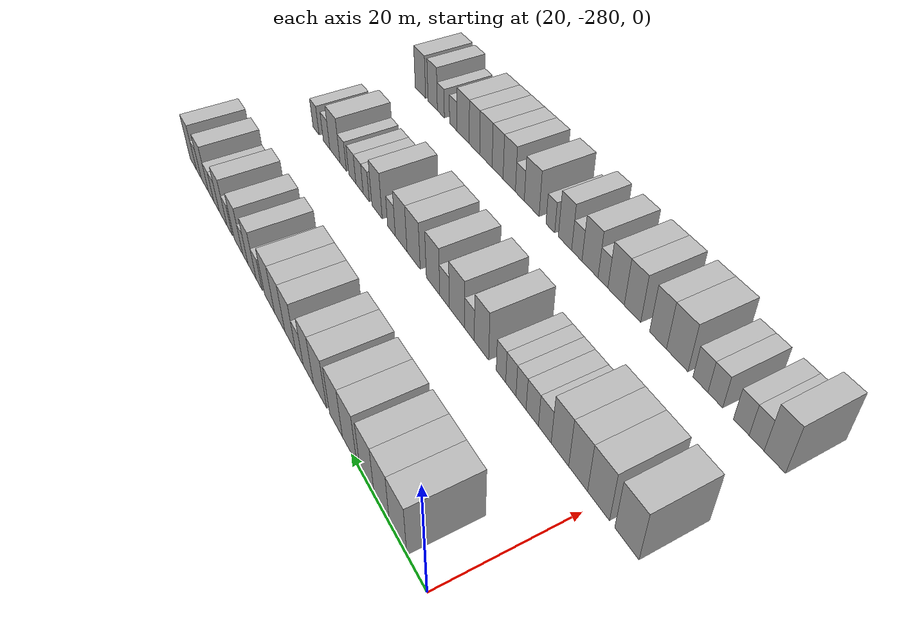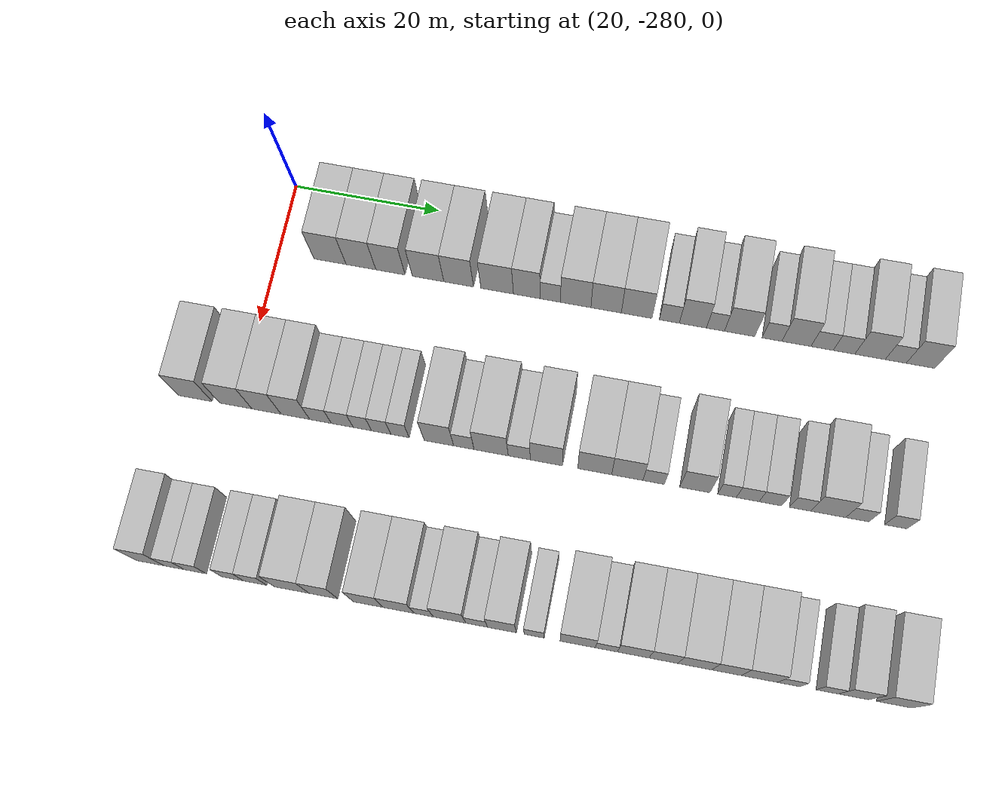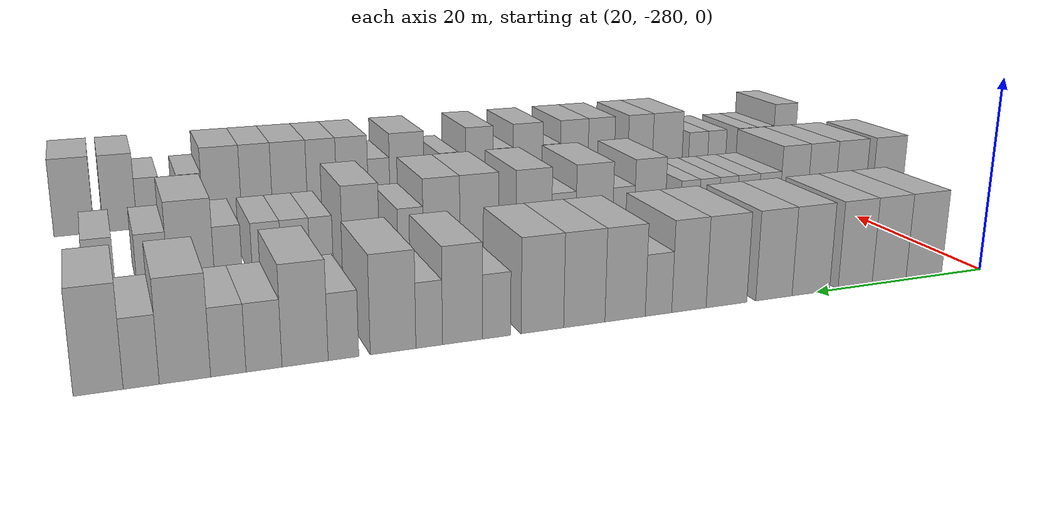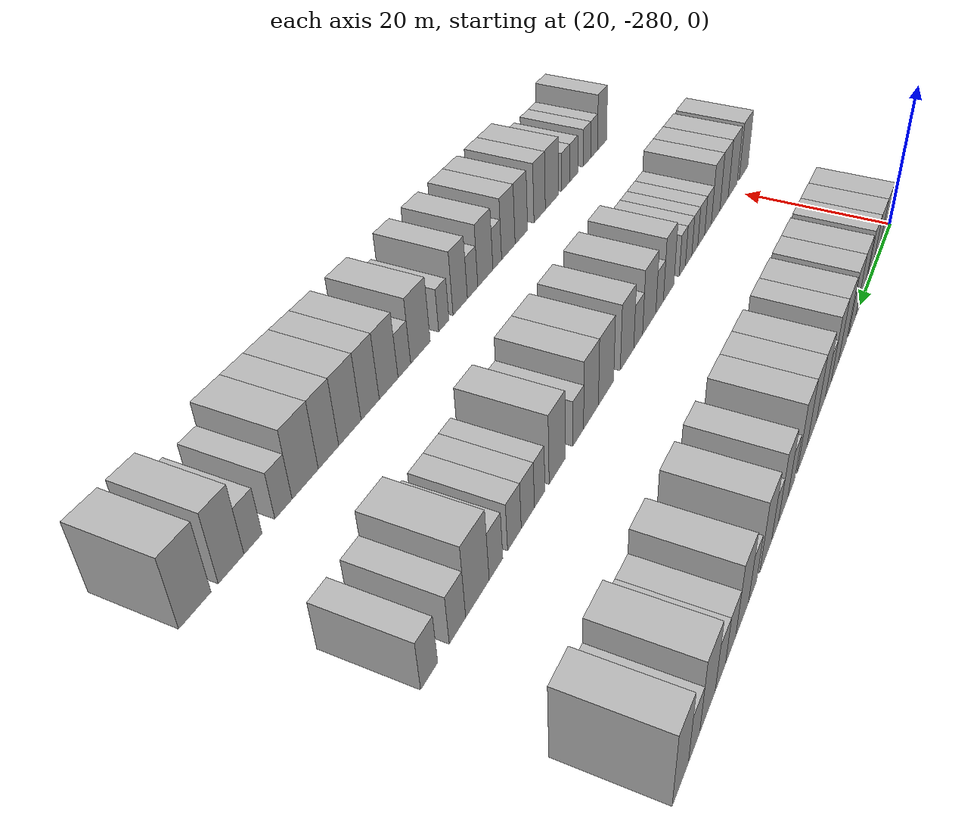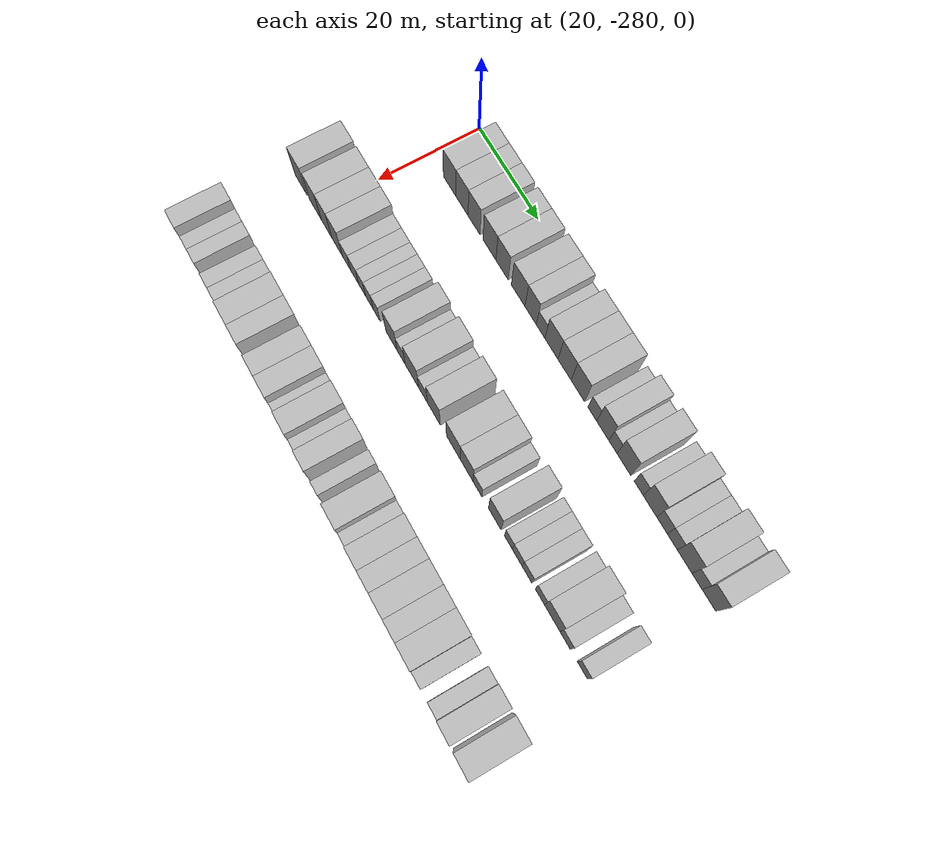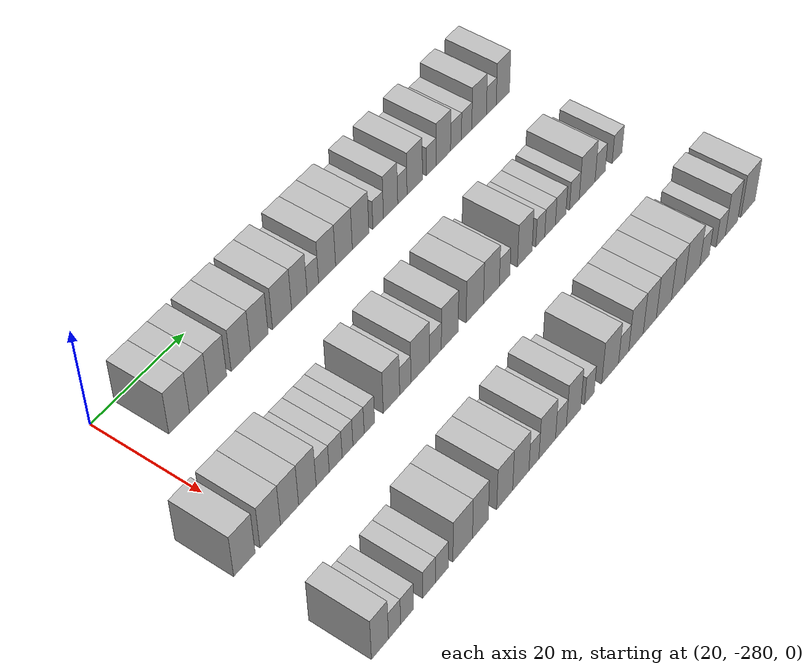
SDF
<sdf version="1.6">
 <world name="default">
  <model name="building_24">
   <static>1</static>
   <pose>25.0000 -272.8381 0 0.000000 0.000000 0.000000</pose>
   <link name="link">
    <pose>0 0 4.50 0 0 0</pose>
    <collision name="collision"><geometry><box><size>10.0000 4.4358 9.0000</size></box></geometry></collision>
    <visual name="visual">
     <cast_shadows>0</cast_shadows>
     <geometry><box><size>10.0000 4.4358 9.0000</size></box></geometry>
     <material>
      <script>
       <uri>model://HANNAS_wall/materials/scripts</uri>
       <uri>model://HANNAS_wall/materials/textures</uri>
       <name>vrc/HANNAS_wall</name>
      </script>
     </material>
    </visual>
   </link>
  </model>
  <model name="building_25">
   <static>1</static>
   <pose>25.0000 -268.5640 0 0.000000 0.000000 0.000000</pose>
   <link name="link">
    <pose>0 0 4.50 0 0 0</pose>
    <collision name="collision"><geometry><box><size>10.0000 4.1124 9.0000</size></box></geometry></collision>
    <visual name="visual">
     <cast_shadows>0</cast_shadows>
     <geometry><box><size>10.0000 4.1124 9.0000</size></box></geometry>
     <material>
      <script>
       <uri>model://HANNAS_wall/materials/scripts</uri>
       <uri>model://HANNAS_wall/materials/textures</uri>
       <name>vrc/HANNAS_wall</name>
      </script>
     </material>
    </visual>
   </link>
  </model>
  <model name="building_26">
   <static>1</static>
   <pose>25.0000 -264.4887 0 0.000000 0.000000 0.000000</pose>
   <link name="link">
    <pose>0 0 4.50 0 0 0</pose>
    <collision name="collision"><geometry><box><size>10.0000 4.0382 9.0000</size></box></geometry></collision>
    <visual name="visual">
     <cast_shadows>0</cast_shadows>
     <geometry><box><size>10.0000 4.0382 9.0000</size></box></geometry>
     <material>
      <script>
       <uri>model://HANNAS_wall/materials/scripts</uri>
       <uri>model://HANNAS_wall/materials/textures</uri>
       <name>vrc/HANNAS_wall</name>
      </script>
     </material>
    </visual>
   </link>
  </model>
  <model name="building_27">
   <static>1</static>
   <pose>25.0000 -259.3070 0 0.000000 0.000000 0.000000</pose>
   <link name="link">
    <pose>0 0 4.50 0 0 0</pose>
    <collision name="collision"><geometry><box><size>10.0000 4.3252 9.0000</size></box></geometry></collision>
    <visual name="visual">
     <cast_shadows>0</cast_shadows>
     <geometry><box><size>10.0000 4.3252 9.0000</size></box></geometry>
     <material>
      <script>
       <uri>model://HANNAS_wall/materials/scripts</uri>
       <uri>model://HANNAS_wall/materials/textures</uri>
       <name>vrc/HANNAS_wall</name>
      </script>
     </material>
    </visual>
   </link>
  </model>
  <model name="building_28">
   <static>1</static>
   <pose>25.0000 -255.1057 0 0.000000 0.000000 0.000000</pose>
   <link name="link">
    <pose>0 0 4.50 0 0 0</pose>
    <collision name="collision"><geometry><box><size>10.0000 4.0774 9.0000</size></box></geometry></collision>
    <visual name="visual">
     <cast_shadows>0</cast_shadows>
     <geometry><box><size>10.0000 4.0774 9.0000</size></box></geometry>
     <material>
      <script>
       <uri>model://HANNAS_wall/materials/scripts</uri>
       <uri>model://HANNAS_wall/materials/textures</uri>
       <name>vrc/HANNAS_wall</name>
      </script>
     </material>
    </visual>
   </link>
  </model>
  <model name="building_29">
   <static>1</static>
   <pose>25.0000 -249.8453 0 0.000000 0.000000 0.000000</pose>
   <link name="link">
    <pose>0 0 4.50 0 0 0</pose>
    <collision name="collision"><geometry><box><size>10.0000 4.4433 9.0000</size></box></geometry></collision>
    <visual name="visual">
     <cast_shadows>0</cast_shadows>
     <geometry><box><size>10.0000 4.4433 9.0000</size></box></geometry>
     <material>
      <script>
       <uri>model://HANNAS_wall/materials/scripts</uri>
       <uri>model://HANNAS_wall/materials/textures</uri>
       <name>vrc/HANNAS_wall</name>
      </script>
     </material>
    </visual>
   </link>
  </model>
  <model name="building_30">
   <static>1</static>
   <pose>25.0000 -245.7950 0 0.000000 0.000000 0.000000</pose>
   <link name="link">
    <pose>0 0 4.50 0 0 0</pose>
    <collision name="collision"><geometry><box><size>10.0000 3.6573 9.0000</size></box></geometry></collision>
    <visual name="visual">
     <cast_shadows>0</cast_shadows>
     <geometry><box><size>10.0000 3.6573 9.0000</size></box></geometry>
     <material>
      <script>
       <uri>model://HANNAS_wall/materials/scripts</uri>
       <uri>model://HANNAS_wall/materials/textures</uri>
       <name>vrc/HANNAS_wall</name>
      </script>
     </material>
    </visual>
   </link>
  </model>
  <model name="building_31">
   <static>1</static>
   <pose>25.0000 -242.5853 0 0.000000 0.000000 0.000000</pose>
   <link name="link">
    <pose>0 0 3.00 0 0 0</pose>
    <collision name="collision"><geometry><box><size>10.0000 2.7622 6.0000</size></box></geometry></collision>
    <visual name="visual">
     <cast_shadows>0</cast_shadows>
     <geometry><box><size>10.0000 2.7622 6.0000</size></box></geometry>
     <material>
      <script>
       <uri>model://HANNAS_wall/materials/scripts</uri>
       <uri>model://HANNAS_wall/materials/textures</uri>
       <name>vrc/HANNAS_wall</name>
      </script>
     </material>
    </visual>
   </link>
  </model>
  <model name="building_32">
   <static>1</static>
   <pose>25.0000 -239.1436 0 0.000000 0.000000 0.000000</pose>
   <link name="link">
    <pose>0 0 4.50 0 0 0</pose>
    <collision name="collision"><geometry><box><size>10.0000 4.1211 9.0000</size></box></geometry></collision>
    <visual name="visual">
     <cast_shadows>0</cast_shadows>
     <geometry><box><size>10.0000 4.1211 9.0000</size></box></geometry>
     <material>
      <script>
       <uri>model://HANNAS_wall/materials/scripts</uri>
       <uri>model://HANNAS_wall/materials/textures</uri>
       <name>vrc/HANNAS_wall</name>
      </script>
     </material>
    </visual>
   </link>
  </model>
  <model name="building_33">
   <static>1</static>
   <pose>25.0000 -235.0254 0 0.000000 0.000000 0.000000</pose>
   <link name="link">
    <pose>0 0 4.50 0 0 0</pose>
    <collision name="collision"><geometry><box><size>10.0000 4.1152 9.0000</size></box></geometry></collision>
    <visual name="visual">
     <cast_shadows>0</cast_shadows>
     <geometry><box><size>10.0000 4.1152 9.0000</size></box></geometry>
     <material>
      <script>
       <uri>model://HANNAS_wall/materials/scripts</uri>
       <uri>model://HANNAS_wall/materials/textures</uri>
       <name>vrc/HANNAS_wall</name>
      </script>
     </material>
    </visual>
   </link>
  </model>
  <model name="building_34">
   <static>1</static>
   <pose>25.0000 -230.9001 0 0.000000 0.000000 0.000000</pose>
   <link name="link">
    <pose>0 0 4.50 0 0 0</pose>
    <collision name="collision"><geometry><box><size>10.0000 4.1354 9.0000</size></box></geometry></collision>
    <visual name="visual">
     <cast_shadows>0</cast_shadows>
     <geometry><box><size>10.0000 4.1354 9.0000</size></box></geometry>
     <material>
      <script>
       <uri>model://HANNAS_wall/materials/scripts</uri>
       <uri>model://HANNAS_wall/materials/textures</uri>
       <name>vrc/HANNAS_wall</name>
      </script>
     </material>
    </visual>
   </link>
  </model>
  <model name="building_35">
   <static>1</static>
   <pose>25.0000 -226.4916 0 0.000000 0.000000 0.000000</pose>
   <link name="link">
    <pose>0 0 3.00 0 0 0</pose>
    <collision name="collision"><geometry><box><size>10.0000 2.6815 6.0000</size></box></geometry></collision>
    <visual name="visual">
     <cast_shadows>0</cast_shadows>
     <geometry><box><size>10.0000 2.6815 6.0000</size></box></geometry>
     <material>
      <script>
       <uri>model://HANNAS_wall/materials/scripts</uri>
       <uri>model://HANNAS_wall/materials/textures</uri>
       <name>vrc/HANNAS_wall</name>
      </script>
     </material>
    </visual>
   </link>
  </model>
  <model name="building_36">
   <static>1</static>
   <pose>25.0000 -223.3160 0 0.000000 0.000000 0.000000</pose>
   <link name="link">
    <pose>0 0 4.50 0 0 0</pose>
    <collision name="collision"><geometry><box><size>10.0000 3.6698 9.0000</size></box></geometry></collision>
    <visual name="visual">
     <cast_shadows>0</cast_shadows>
     <geometry><box><size>10.0000 3.6698 9.0000</size></box></geometry>
     <material>
      <script>
       <uri>model://HANNAS_wall/materials/scripts</uri>
       <uri>model://HANNAS_wall/materials/textures</uri>
       <name>vrc/HANNAS_wall</name>
      </script>
     </material>
    </visual>
   </link>
  </model>
  <model name="building_37">
   <static>1</static>
   <pose>25.0000 -220.2763 0 0.000000 0.000000 0.000000</pose>
   <link name="link">
    <pose>0 0 3.00 0 0 0</pose>
    <collision name="collision"><geometry><box><size>10.0000 2.4096 6.0000</size></box></geometry></collision>
    <visual name="visual">
     <cast_shadows>0</cast_shadows>
     <geometry><box><size>10.0000 2.4096 6.0000</size></box></geometry>
     <material>
      <script>
       <uri>model://HANNAS_wall/materials/scripts</uri>
       <uri>model://HANNAS_wall/materials/textures</uri>
       <name>vrc/HANNAS_wall</name>
      </script>
     </material>
    </visual>
   </link>
  </model>
  <model name="building_38">
   <static>1</static>
   <pose>25.0000 -217.0470 0 0.000000 0.000000 0.000000</pose>
   <link name="link">
    <pose>0 0 4.50 0 0 0</pose>
    <collision name="collision"><geometry><box><size>10.0000 4.0490 9.0000</size></box></geometry></collision>
    <visual name="visual">
     <cast_shadows>0</cast_shadows>
     <geometry><box><size>10.0000 4.0490 9.0000</size></box></geometry>
     <material>
      <script>
       <uri>model://HANNAS_wall/materials/scripts</uri>
       <uri>model://HANNAS_wall/materials/textures</uri>
       <name>vrc/HANNAS_wall</name>
      </script>
     </material>
    </visual>
   </link>
  </model>
  <model name="building_39">
   <static>1</static>
   <pose>25.0000 -212.7043 0 0.000000 0.000000 0.000000</pose>
   <link name="link">
    <pose>0 0 3.00 0 0 0</pose>
    <collision name="collision"><geometry><box><size>10.0000 2.6364 6.0000</size></box></geometry></collision>
    <visual name="visual">
     <cast_shadows>0</cast_shadows>
     <geometry><box><size>10.0000 2.6364 6.0000</size></box></geometry>
     <material>
      <script>
       <uri>model://HANNAS_wall/materials/scripts</uri>
       <uri>model://HANNAS_wall/materials/textures</uri>
       <name>vrc/HANNAS_wall</name>
      </script>
     </material>
    </visual>
   </link>
  </model>
  <model name="building_40">
   <static>1</static>
   <pose>25.0000 -209.4399 0 0.000000 0.000000 0.000000</pose>
   <link name="link">
    <pose>0 0 4.50 0 0 0</pose>
    <collision name="collision"><geometry><box><size>10.0000 3.8924 9.0000</size></box></geometry></collision>
    <visual name="visual">
     <cast_shadows>0</cast_shadows>
     <geometry><box><size>10.0000 3.8924 9.0000</size></box></geometry>
     <material>
      <script>
       <uri>model://HANNAS_wall/materials/scripts</uri>
       <uri>model://HANNAS_wall/materials/textures</uri>
       <name>vrc/HANNAS_wall</name>
      </script>
     </material>
    </visual>
   </link>
  </model>
  <model name="building_41">
   <static>1</static>
   <pose>25.0000 -206.0115 0 0.000000 0.000000 0.000000</pose>
   <link name="link">
    <pose>0 0 3.00 0 0 0</pose>
    <collision name="collision"><geometry><box><size>10.0000 2.9644 6.0000</size></box></geometry></collision>
    <visual name="visual">
     <cast_shadows>0</cast_shadows>
     <geometry><box><size>10.0000 2.9644 6.0000</size></box></geometry>
     <material>
      <script>
       <uri>model://HANNAS_wall/materials/scripts</uri>
       <uri>model://HANNAS_wall/materials/textures</uri>
       <name>vrc/HANNAS_wall</name>
      </script>
     </material>
    </visual>
   </link>
  </model>
  <model name="building_42">
   <static>1</static>
   <pose>25.0000 -203.1004 0 0.000000 0.000000 0.000000</pose>
   <link name="link">
    <pose>0 0 3.00 0 0 0</pose>
    <collision name="collision"><geometry><box><size>10.0000 2.8578 6.0000</size></box></geometry></collision>
    <visual name="visual">
     <cast_shadows>0</cast_shadows>
     <geometry><box><size>10.0000 2.8578 6.0000</size></box></geometry>
     <material>
      <script>
       <uri>model://HANNAS_wall/materials/scripts</uri>
       <uri>model://HANNAS_wall/materials/textures</uri>
       <name>vrc/HANNAS_wall</name>
      </script>
     </material>
    </visual>
   </link>
  </model>
  <model name="building_43">
   <static>1</static>
   <pose>25.0000 -199.6466 0 0.000000 0.000000 0.000000</pose>
   <link name="link">
    <pose>0 0 4.50 0 0 0</pose>
    <collision name="collision"><geometry><box><size>10.0000 4.0496 9.0000</size></box></geometry></collision>
    <visual name="visual">
     <cast_shadows>0</cast_shadows>
     <geometry><box><size>10.0000 4.0496 9.0000</size></box></geometry>
     <material>
      <script>
       <uri>model://HANNAS_wall/materials/scripts</uri>
       <uri>model://HANNAS_wall/materials/textures</uri>
       <name>vrc/HANNAS_wall</name>
      </script>
     </material>
    </visual>
   </link>
  </model>
  <model name="building_44">
   <static>1</static>
   <pose>25.0000 -196.2347 0 0.000000 0.000000 0.000000</pose>
   <link name="link">
    <pose>0 0 3.00 0 0 0</pose>
    <collision name="collision"><geometry><box><size>10.0000 2.7743 6.0000</size></box></geometry></collision>
    <visual name="visual">
     <cast_shadows>0</cast_shadows>
     <geometry><box><size>10.0000 2.7743 6.0000</size></box></geometry>
     <material>
      <script>
       <uri>model://HANNAS_wall/materials/scripts</uri>
       <uri>model://HANNAS_wall/materials/textures</uri>
       <name>vrc/HANNAS_wall</name>
      </script>
     </material>
    </visual>
   </link>
  </model>
  <model name="building_45">
   <static>1</static>
   <pose>25.0000 -192.9598 0 0.000000 0.000000 0.000000</pose>
   <link name="link">
    <pose>0 0 4.50 0 0 0</pose>
    <collision name="collision"><geometry><box><size>10.0000 3.7755 9.0000</size></box></geometry></collision>
    <visual name="visual">
     <cast_shadows>0</cast_shadows>
     <geometry><box><size>10.0000 3.7755 9.0000</size></box></geometry>
     <material>
      <script>
       <uri>model://HANNAS_wall/materials/scripts</uri>
       <uri>model://HANNAS_wall/materials/textures</uri>
       <name>vrc/HANNAS_wall</name>
      </script>
     </material>
    </visual>
   </link>
  </model>
  <model name="building_219">
   <static>1</static>
   <pose>47.0000 -285.6681 0 0.000000 0.000000 0.000000</pose>
   <link name="link">
    <pose>0 0 4.50 0 0 0</pose>
    <collision name="collision"><geometry><box><size>10.0000 4.4827 9.0000</size></box></geometry></collision>
    <visual name="visual">
     <cast_shadows>0</cast_shadows>
     <geometry><box><size>10.0000 4.4827 9.0000</size></box></geometry>
     <material>
      <script>
       <uri>model://HANNAS_wall/materials/scripts</uri>
       <uri>model://HANNAS_wall/materials/textures</uri>
       <name>vrc/HANNAS_wall</name>
      </script>
     </material>
    </visual>
   </link>
  </model>
  <model name="building_220">
   <static>1</static>
   <pose>47.0000 -280.2507 0 0.000000 0.000000 0.000000</pose>
   <link name="link">
    <pose>0 0 4.50 0 0 0</pose>
    <collision name="collision"><geometry><box><size>10.0000 4.3521 9.0000</size></box></geometry></collision>
    <visual name="visual">
     <cast_shadows>0</cast_shadows>
     <geometry><box><size>10.0000 4.3521 9.0000</size></box></geometry>
     <material>
      <script>
       <uri>model://HANNAS_wall/materials/scripts</uri>
       <uri>model://HANNAS_wall/materials/textures</uri>
       <name>vrc/HANNAS_wall</name>
      </script>
     </material>
    </visual>
   </link>
  </model>
  <model name="building_221">
   <static>1</static>
   <pose>47.0000 -276.1118 0 0.000000 0.000000 0.000000</pose>
   <link name="link">
    <pose>0 0 4.50 0 0 0</pose>
    <collision name="collision"><geometry><box><size>10.0000 3.9256 9.0000</size></box></geometry></collision>
    <visual name="visual">
     <cast_shadows>0</cast_shadows>
     <geometry><box><size>10.0000 3.9256 9.0000</size></box></geometry>
     <material>
      <script>
       <uri>model://HANNAS_wall/materials/scripts</uri>
       <uri>model://HANNAS_wall/materials/textures</uri>
       <name>vrc/HANNAS_wall</name>
      </script>
     </material>
    </visual>
   </link>
  </model>
  <model name="building_222">
   <static>1</static>
   <pose>47.0000 -272.2307 0 0.000000 0.000000 0.000000</pose>
   <link name="link">
    <pose>0 0 4.50 0 0 0</pose>
    <collision name="collision"><geometry><box><size>10.0000 3.8366 9.0000</size></box></geometry></collision>
    <visual name="visual">
     <cast_shadows>0</cast_shadows>
     <geometry><box><size>10.0000 3.8366 9.0000</size></box></geometry>
     <material>
      <script>
       <uri>model://HANNAS_wall/materials/scripts</uri>
       <uri>model://HANNAS_wall/materials/textures</uri>
       <name>vrc/HANNAS_wall</name>
      </script>
     </material>
    </visual>
   </link>
  </model>
  <model name="building_223">
   <static>1</static>
   <pose>47.0000 -268.8631 0 0.000000 0.000000 0.000000</pose>
   <link name="link">
    <pose>0 0 3.00 0 0 0</pose>
    <collision name="collision"><geometry><box><size>10.0000 2.8985 6.0000</size></box></geometry></collision>
    <visual name="visual">
     <cast_shadows>0</cast_shadows>
     <geometry><box><size>10.0000 2.8985 6.0000</size></box></geometry>
     <material>
      <script>
       <uri>model://HANNAS_wall/materials/scripts</uri>
       <uri>model://HANNAS_wall/materials/textures</uri>
       <name>vrc/HANNAS_wall</name>
      </script>
     </material>
    </visual>
   </link>
  </model>
  <model name="building_224">
   <static>1</static>
   <pose>47.0000 -265.9596 0 0.000000 0.000000 0.000000</pose>
   <link name="link">
    <pose>0 0 3.00 0 0 0</pose>
    <collision name="collision"><geometry><box><size>10.0000 2.9086 6.0000</size></box></geometry></collision>
    <visual name="visual">
     <cast_shadows>0</cast_shadows>
     <geometry><box><size>10.0000 2.9086 6.0000</size></box></geometry>
     <material>
      <script>
       <uri>model://HANNAS_wall/materials/scripts</uri>
       <uri>model://HANNAS_wall/materials/textures</uri>
       <name>vrc/HANNAS_wall</name>
      </script>
     </material>
    </visual>
   </link>
  </model>
  <model name="building_225">
   <static>1</static>
   <pose>47.0000 -263.2829 0 0.000000 0.000000 0.000000</pose>
   <link name="link">
    <pose>0 0 3.00 0 0 0</pose>
    <collision name="collision"><geometry><box><size>10.0000 2.4448 6.0000</size></box></geometry></collision>
    <visual name="visual">
     <cast_shadows>0</cast_shadows>
     <geometry><box><size>10.0000 2.4448 6.0000</size></box></geometry>
     <material>
      <script>
       <uri>model://HANNAS_wall/materials/scripts</uri>
       <uri>model://HANNAS_wall/materials/textures</uri>
       <name>vrc/HANNAS_wall</name>
      </script>
     </material>
    </visual>
   </link>
  </model>
  <model name="building_226">
   <static>1</static>
   <pose>47.0000 -260.7790 0 0.000000 0.000000 0.000000</pose>
   <link name="link">
    <pose>0 0 3.00 0 0 0</pose>
    <collision name="collision"><geometry><box><size>10.0000 2.5629 6.0000</size></box></geometry></collision>
    <visual name="visual">
     <cast_shadows>0</cast_shadows>
     <geometry><box><size>10.0000 2.5629 6.0000</size></box></geometry>
     <material>
      <script>
       <uri>model://HANNAS_wall/materials/scripts</uri>
       <uri>model://HANNAS_wall/materials/textures</uri>
       <name>vrc/HANNAS_wall</name>
      </script>
     </material>
    </visual>
   </link>
  </model>
  <model name="building_227">
   <static>1</static>
   <pose>47.0000 -258.2834 0 0.000000 0.000000 0.000000</pose>
   <link name="link">
    <pose>0 0 3.00 0 0 0</pose>
    <collision name="collision"><geometry><box><size>10.0000 2.4282 6.0000</size></box></geometry></collision>
    <visual name="visual">
     <cast_shadows>0</cast_shadows>
     <geometry><box><size>10.0000 2.4282 6.0000</size></box></geometry>
     <material>
      <script>
       <uri>model://HANNAS_wall/materials/scripts</uri>
       <uri>model://HANNAS_wall/materials/textures</uri>
       <name>vrc/HANNAS_wall</name>
      </script>
     </material>
    </visual>
   </link>
  </model>
  <model name="building_228">
   <static>1</static>
   <pose>47.0000 -253.1214 0 0.000000 0.000000 0.000000</pose>
   <link name="link">
    <pose>0 0 4.50 0 0 0</pose>
    <collision name="collision"><geometry><box><size>10.0000 3.8958 9.0000</size></box></geometry></collision>
    <visual name="visual">
     <cast_shadows>0</cast_shadows>
     <geometry><box><size>10.0000 3.8958 9.0000</size></box></geometry>
     <material>
      <script>
       <uri>model://HANNAS_wall/materials/scripts</uri>
       <uri>model://HANNAS_wall/materials/textures</uri>
       <name>vrc/HANNAS_wall</name>
      </script>
     </material>
    </visual>
   </link>
  </model>
  <model name="building_229">
   <static>1</static>
   <pose>47.0000 -249.8276 0 0.000000 0.000000 0.000000</pose>
   <link name="link">
    <pose>0 0 3.00 0 0 0</pose>
    <collision name="collision"><geometry><box><size>10.0000 2.6919 6.0000</size></box></geometry></collision>
    <visual name="visual">
     <cast_shadows>0</cast_shadows>
     <geometry><box><size>10.0000 2.6919 6.0000</size></box></geometry>
     <material>
      <script>
       <uri>model://HANNAS_wall/materials/scripts</uri>
       <uri>model://HANNAS_wall/materials/textures</uri>
       <name>vrc/HANNAS_wall</name>
      </script>
     </material>
    </visual>
   </link>
  </model>
  <model name="building_230">
   <static>1</static>
   <pose>47.0000 -246.2320 0 0.000000 0.000000 0.000000</pose>
   <link name="link">
    <pose>0 0 4.50 0 0 0</pose>
    <collision name="collision"><geometry><box><size>10.0000 4.4992 9.0000</size></box></geometry></collision>
    <visual name="visual">
     <cast_shadows>0</cast_shadows>
     <geometry><box><size>10.0000 4.4992 9.0000</size></box></geometry>
     <material>
      <script>
       <uri>model://HANNAS_wall/materials/scripts</uri>
       <uri>model://HANNAS_wall/materials/textures</uri>
       <name>vrc/HANNAS_wall</name>
      </script>
     </material>
    </visual>
   </link>
  </model>
  <model name="building_231">
   <static>1</static>
   <pose>47.0000 -242.5300 0 0.000000 0.000000 0.000000</pose>
   <link name="link">
    <pose>0 0 3.00 0 0 0</pose>
    <collision name="collision"><geometry><box><size>10.0000 2.9048 6.0000</size></box></geometry></collision>
    <visual name="visual">
     <cast_shadows>0</cast_shadows>
     <geometry><box><size>10.0000 2.9048 6.0000</size></box></geometry>
     <material>
      <script>
       <uri>model://HANNAS_wall/materials/scripts</uri>
       <uri>model://HANNAS_wall/materials/textures</uri>
       <name>vrc/HANNAS_wall</name>
      </script>
     </material>
    </visual>
   </link>
  </model>
  <model name="building_232">
   <static>1</static>
   <pose>47.0000 -238.9685 0 0.000000 0.000000 0.000000</pose>
   <link name="link">
    <pose>0 0 4.50 0 0 0</pose>
    <collision name="collision"><geometry><box><size>10.0000 4.2183 9.0000</size></box></geometry></collision>
    <visual name="visual">
     <cast_shadows>0</cast_shadows>
     <geometry><box><size>10.0000 4.2183 9.0000</size></box></geometry>
     <material>
      <script>
       <uri>model://HANNAS_wall/materials/scripts</uri>
       <uri>model://HANNAS_wall/materials/textures</uri>
       <name>vrc/HANNAS_wall</name>
      </script>
     </material>
    </visual>
   </link>
  </model>
  <model name="building_233">
   <static>1</static>
   <pose>47.0000 -232.6510 0 0.000000 0.000000 0.000000</pose>
   <link name="link">
    <pose>0 0 4.50 0 0 0</pose>
    <collision name="collision"><geometry><box><size>10.0000 4.4167 9.0000</size></box></geometry></collision>
    <visual name="visual">
     <cast_shadows>0</cast_shadows>
     <geometry><box><size>10.0000 4.4167 9.0000</size></box></geometry>
     <material>
      <script>
       <uri>model://HANNAS_wall/materials/scripts</uri>
       <uri>model://HANNAS_wall/materials/textures</uri>
       <name>vrc/HANNAS_wall</name>
      </script>
     </material>
    </visual>
   </link>
  </model>
  <model name="building_234">
   <static>1</static>
   <pose>47.0000 -228.4030 0 0.000000 0.000000 0.000000</pose>
   <link name="link">
    <pose>0 0 4.50 0 0 0</pose>
    <collision name="collision"><geometry><box><size>10.0000 4.0792 9.0000</size></box></geometry></collision>
    <visual name="visual">
     <cast_shadows>0</cast_shadows>
     <geometry><box><size>10.0000 4.0792 9.0000</size></box></geometry>
     <material>
      <script>
       <uri>model://HANNAS_wall/materials/scripts</uri>
       <uri>model://HANNAS_wall/materials/textures</uri>
       <name>vrc/HANNAS_wall</name>
      </script>
     </material>
    </visual>
   </link>
  </model>
  <model name="building_235">
   <static>1</static>
   <pose>47.0000 -224.9737 0 0.000000 0.000000 0.000000</pose>
   <link name="link">
    <pose>0 0 3.00 0 0 0</pose>
    <collision name="collision"><geometry><box><size>10.0000 2.7795 6.0000</size></box></geometry></collision>
    <visual name="visual">
     <cast_shadows>0</cast_shadows>
     <geometry><box><size>10.0000 2.7795 6.0000</size></box></geometry>
     <material>
      <script>
       <uri>model://HANNAS_wall/materials/scripts</uri>
       <uri>model://HANNAS_wall/materials/textures</uri>
       <name>vrc/HANNAS_wall</name>
      </script>
     </material>
    </visual>
   </link>
  </model>
  <model name="building_236">
   <static>1</static>
   <pose>47.0000 -219.6253 0 0.000000 0.000000 0.000000</pose>
   <link name="link">
    <pose>0 0 4.50 0 0 0</pose>
    <collision name="collision"><geometry><box><size>10.0000 3.9173 9.0000</size></box></geometry></collision>
    <visual name="visual">
     <cast_shadows>0</cast_shadows>
     <geometry><box><size>10.0000 3.9173 9.0000</size></box></geometry>
     <material>
      <script>
       <uri>model://HANNAS_wall/materials/scripts</uri>
       <uri>model://HANNAS_wall/materials/textures</uri>
       <name>vrc/HANNAS_wall</name>
      </script>
     </material>
    </visual>
   </link>
  </model>
  <model name="building_237">
   <static>1</static>
   <pose>47.0000 -215.4565 0 0.000000 0.000000 0.000000</pose>
   <link name="link">
    <pose>0 0 3.00 0 0 0</pose>
    <collision name="collision"><geometry><box><size>10.0000 2.4202 6.0000</size></box></geometry></collision>
    <visual name="visual">
     <cast_shadows>0</cast_shadows>
     <geometry><box><size>10.0000 2.4202 6.0000</size></box></geometry>
     <material>
      <script>
       <uri>model://HANNAS_wall/materials/scripts</uri>
       <uri>model://HANNAS_wall/materials/textures</uri>
       <name>vrc/HANNAS_wall</name>
      </script>
     </material>
    </visual>
   </link>
  </model>
  <model name="building_238">
   <static>1</static>
   <pose>47.0000 -212.7758 0 0.000000 0.000000 0.000000</pose>
   <link name="link">
    <pose>0 0 3.00 0 0 0</pose>
    <collision name="collision"><geometry><box><size>10.0000 2.9411 6.0000</size></box></geometry></collision>
    <visual name="visual">
     <cast_shadows>0</cast_shadows>
     <geometry><box><size>10.0000 2.9411 6.0000</size></box></geometry>
     <material>
      <script>
       <uri>model://HANNAS_wall/materials/scripts</uri>
       <uri>model://HANNAS_wall/materials/textures</uri>
       <name>vrc/HANNAS_wall</name>
      </script>
     </material>
    </visual>
   </link>
  </model>
  <model name="building_239">
   <static>1</static>
   <pose>47.0000 -209.8470 0 0.000000 0.000000 0.000000</pose>
   <link name="link">
    <pose>0 0 3.00 0 0 0</pose>
    <collision name="collision"><geometry><box><size>10.0000 2.9166 6.0000</size></box></geometry></collision>
    <visual name="visual">
     <cast_shadows>0</cast_shadows>
     <geometry><box><size>10.0000 2.9166 6.0000</size></box></geometry>
     <material>
      <script>
       <uri>model://HANNAS_wall/materials/scripts</uri>
       <uri>model://HANNAS_wall/materials/textures</uri>
       <name>vrc/HANNAS_wall</name>
      </script>
     </material>
    </visual>
   </link>
  </model>
  <model name="building_240">
   <static>1</static>
   <pose>47.0000 -206.0154 0 0.000000 0.000000 0.000000</pose>
   <link name="link">
    <pose>0 0 3.00 0 0 0</pose>
    <collision name="collision"><geometry><box><size>10.0000 2.7466 6.0000</size></box></geometry></collision>
    <visual name="visual">
     <cast_shadows>0</cast_shadows>
     <geometry><box><size>10.0000 2.7466 6.0000</size></box></geometry>
     <material>
      <script>
       <uri>model://HANNAS_wall/materials/scripts</uri>
       <uri>model://HANNAS_wall/materials/textures</uri>
       <name>vrc/HANNAS_wall</name>
      </script>
     </material>
    </visual>
   </link>
  </model>
  <model name="building_241">
   <static>1</static>
   <pose>47.0000 -202.4002 0 0.000000 0.000000 0.000000</pose>
   <link name="link">
    <pose>0 0 4.50 0 0 0</pose>
    <collision name="collision"><geometry><box><size>10.0000 4.4838 9.0000</size></box></geometry></collision>
    <visual name="visual">
     <cast_shadows>0</cast_shadows>
     <geometry><box><size>10.0000 4.4838 9.0000</size></box></geometry>
     <material>
      <script>
       <uri>model://HANNAS_wall/materials/scripts</uri>
       <uri>model://HANNAS_wall/materials/textures</uri>
       <name>vrc/HANNAS_wall</name>
      </script>
     </material>
    </visual>
   </link>
  </model>
  <model name="building_242">
   <static>1</static>
   <pose>47.0000 -198.6741 0 0.000000 0.000000 0.000000</pose>
   <link name="link">
    <pose>0 0 3.00 0 0 0</pose>
    <collision name="collision"><geometry><box><size>10.0000 2.9684 6.0000</size></box></geometry></collision>
    <visual name="visual">
     <cast_shadows>0</cast_shadows>
     <geometry><box><size>10.0000 2.9684 6.0000</size></box></geometry>
     <material>
      <script>
       <uri>model://HANNAS_wall/materials/scripts</uri>
       <uri>model://HANNAS_wall/materials/textures</uri>
       <name>vrc/HANNAS_wall</name>
      </script>
     </material>
    </visual>
   </link>
  </model>
  <model name="building_243">
   <static>1</static>
   <pose>47.0000 -193.7639 0 0.000000 0.000000 0.000000</pose>
   <link name="link">
    <pose>0 0 3.00 0 0 0</pose>
    <collision name="collision"><geometry><box><size>10.0000 2.8520 6.0000</size></box></geometry></collision>
    <visual name="visual">
     <cast_shadows>0</cast_shadows>
     <geometry><box><size>10.0000 2.8520 6.0000</size></box></geometry>
     <material>
      <script>
       <uri>model://HANNAS_wall/materials/scripts</uri>
       <uri>model://HANNAS_wall/materials/textures</uri>
       <name>vrc/HANNAS_wall</name>
      </script>
     </material>
    </visual>
   </link>
  </model>
  <model name="building_410">
   <static>1</static>
   <pose>69.0000 -285.6225 0 0.000000 0.000000 0.000000</pose>
   <link name="link">
    <pose>0 0 4.50 0 0 0</pose>
    <collision name="collision"><geometry><box><size>10.0000 3.6275 9.0000</size></box></geometry></collision>
    <visual name="visual">
     <cast_shadows>0</cast_shadows>
     <geometry><box><size>10.0000 3.6275 9.0000</size></box></geometry>
     <material>
      <script>
       <uri>model://HANNAS_wall/materials/scripts</uri>
       <uri>model://HANNAS_wall/materials/textures</uri>
       <name>vrc/HANNAS_wall</name>
      </script>
     </material>
    </visual>
   </link>
  </model>
  <model name="building_411">
   <static>1</static>
   <pose>69.0000 -282.4978 0 0.000000 0.000000 0.000000</pose>
   <link name="link">
    <pose>0 0 3.00 0 0 0</pose>
    <collision name="collision"><geometry><box><size>10.0000 2.6219 6.0000</size></box></geometry></collision>
    <visual name="visual">
     <cast_shadows>0</cast_shadows>
     <geometry><box><size>10.0000 2.6219 6.0000</size></box></geometry>
     <material>
      <script>
       <uri>model://HANNAS_wall/materials/scripts</uri>
       <uri>model://HANNAS_wall/materials/textures</uri>
       <name>vrc/HANNAS_wall</name>
      </script>
     </material>
    </visual>
   </link>
  </model>
  <model name="building_412">
   <static>1</static>
   <pose>69.0000 -279.7637 0 0.000000 0.000000 0.000000</pose>
   <link name="link">
    <pose>0 0 3.00 0 0 0</pose>
    <collision name="collision"><geometry><box><size>10.0000 2.8463 6.0000</size></box></geometry></collision>
    <visual name="visual">
     <cast_shadows>0</cast_shadows>
     <geometry><box><size>10.0000 2.8463 6.0000</size></box></geometry>
     <material>
      <script>
       <uri>model://HANNAS_wall/materials/scripts</uri>
       <uri>model://HANNAS_wall/materials/textures</uri>
       <name>vrc/HANNAS_wall</name>
      </script>
     </material>
    </visual>
   </link>
  </model>
  <model name="building_413">
   <static>1</static>
   <pose>69.0000 -274.9248 0 0.000000 0.000000 0.000000</pose>
   <link name="link">
    <pose>0 0 3.00 0 0 0</pose>
    <collision name="collision"><geometry><box><size>10.0000 2.8316 6.0000</size></box></geometry></collision>
    <visual name="visual">
     <cast_shadows>0</cast_shadows>
     <geometry><box><size>10.0000 2.8316 6.0000</size></box></geometry>
     <material>
      <script>
       <uri>model://HANNAS_wall/materials/scripts</uri>
       <uri>model://HANNAS_wall/materials/textures</uri>
       <name>vrc/HANNAS_wall</name>
      </script>
     </material>
    </visual>
   </link>
  </model>
  <model name="building_414">
   <static>1</static>
   <pose>69.0000 -272.0284 0 0.000000 0.000000 0.000000</pose>
   <link name="link">
    <pose>0 0 3.00 0 0 0</pose>
    <collision name="collision"><geometry><box><size>10.0000 2.9611 6.0000</size></box></geometry></collision>
    <visual name="visual">
     <cast_shadows>0</cast_shadows>
     <geometry><box><size>10.0000 2.9611 6.0000</size></box></geometry>
     <material>
      <script>
       <uri>model://HANNAS_wall/materials/scripts</uri>
       <uri>model://HANNAS_wall/materials/textures</uri>
       <name>vrc/HANNAS_wall</name>
      </script>
     </material>
    </visual>
   </link>
  </model>
  <model name="building_415">
   <static>1</static>
   <pose>69.0000 -267.2981 0 0.000000 0.000000 0.000000</pose>
   <link name="link">
    <pose>0 0 4.50 0 0 0</pose>
    <collision name="collision"><geometry><box><size>10.0000 4.4993 9.0000</size></box></geometry></collision>
    <visual name="visual">
     <cast_shadows>0</cast_shadows>
     <geometry><box><size>10.0000 4.4993 9.0000</size></box></geometry>
     <material>
      <script>
       <uri>model://HANNAS_wall/materials/scripts</uri>
       <uri>model://HANNAS_wall/materials/textures</uri>
       <name>vrc/HANNAS_wall</name>
      </script>
     </material>
    </visual>
   </link>
  </model>
  <model name="building_416">
   <static>1</static>
   <pose>69.0000 -263.2113 0 0.000000 0.000000 0.000000</pose>
   <link name="link">
    <pose>0 0 4.50 0 0 0</pose>
    <collision name="collision"><geometry><box><size>10.0000 3.6743 9.0000</size></box></geometry></collision>
    <visual name="visual">
     <cast_shadows>0</cast_shadows>
     <geometry><box><size>10.0000 3.6743 9.0000</size></box></geometry>
     <material>
      <script>
       <uri>model://HANNAS_wall/materials/scripts</uri>
       <uri>model://HANNAS_wall/materials/textures</uri>
       <name>vrc/HANNAS_wall</name>
      </script>
     </material>
    </visual>
   </link>
  </model>
  <model name="building_417">
   <static>1</static>
   <pose>69.0000 -257.4634 0 0.000000 0.000000 0.000000</pose>
   <link name="link">
    <pose>0 0 4.50 0 0 0</pose>
    <collision name="collision"><geometry><box><size>10.0000 3.8215 9.0000</size></box></geometry></collision>
    <visual name="visual">
     <cast_shadows>0</cast_shadows>
     <geometry><box><size>10.0000 3.8215 9.0000</size></box></geometry>
     <material>
      <script>
       <uri>model://HANNAS_wall/materials/scripts</uri>
       <uri>model://HANNAS_wall/materials/textures</uri>
       <name>vrc/HANNAS_wall</name>
      </script>
     </material>
    </visual>
   </link>
  </model>
  <model name="building_418">
   <static>1</static>
   <pose>69.0000 -253.5766 0 0.000000 0.000000 0.000000</pose>
   <link name="link">
    <pose>0 0 4.50 0 0 0</pose>
    <collision name="collision"><geometry><box><size>10.0000 3.9521 9.0000</size></box></geometry></collision>
    <visual name="visual">
     <cast_shadows>0</cast_shadows>
     <geometry><box><size>10.0000 3.9521 9.0000</size></box></geometry>
     <material>
      <script>
       <uri>model://HANNAS_wall/materials/scripts</uri>
       <uri>model://HANNAS_wall/materials/textures</uri>
       <name>vrc/HANNAS_wall</name>
      </script>
     </material>
    </visual>
   </link>
  </model>
  <model name="building_419">
   <static>1</static>
   <pose>69.0000 -250.3665 0 0.000000 0.000000 0.000000</pose>
   <link name="link">
    <pose>0 0 3.00 0 0 0</pose>
    <collision name="collision"><geometry><box><size>10.0000 2.4681 6.0000</size></box></geometry></collision>
    <visual name="visual">
     <cast_shadows>0</cast_shadows>
     <geometry><box><size>10.0000 2.4681 6.0000</size></box></geometry>
     <material>
      <script>
       <uri>model://HANNAS_wall/materials/scripts</uri>
       <uri>model://HANNAS_wall/materials/textures</uri>
       <name>vrc/HANNAS_wall</name>
      </script>
     </material>
    </visual>
   </link>
  </model>
  <model name="building_420">
   <static>1</static>
   <pose>69.0000 -247.0676 0 0.000000 0.000000 0.000000</pose>
   <link name="link">
    <pose>0 0 4.50 0 0 0</pose>
    <collision name="collision"><geometry><box><size>10.0000 4.1297 9.0000</size></box></geometry></collision>
    <visual name="visual">
     <cast_shadows>0</cast_shadows>
     <geometry><box><size>10.0000 4.1297 9.0000</size></box></geometry>
     <material>
      <script>
       <uri>model://HANNAS_wall/materials/scripts</uri>
       <uri>model://HANNAS_wall/materials/textures</uri>
       <name>vrc/HANNAS_wall</name>
      </script>
     </material>
    </visual>
   </link>
  </model>
  <model name="building_421">
   <static>1</static>
   <pose>69.0000 -243.6288 0 0.000000 0.000000 0.000000</pose>
   <link name="link">
    <pose>0 0 3.00 0 0 0</pose>
    <collision name="collision"><geometry><box><size>10.0000 2.7478 6.0000</size></box></geometry></collision>
    <visual name="visual">
     <cast_shadows>0</cast_shadows>
     <geometry><box><size>10.0000 2.7478 6.0000</size></box></geometry>
     <material>
      <script>
       <uri>model://HANNAS_wall/materials/scripts</uri>
       <uri>model://HANNAS_wall/materials/textures</uri>
       <name>vrc/HANNAS_wall</name>
      </script>
     </material>
    </visual>
   </link>
  </model>
  <model name="building_422">
   <static>1</static>
   <pose>69.0000 -240.4268 0 0.000000 0.000000 0.000000</pose>
   <link name="link">
    <pose>0 0 4.50 0 0 0</pose>
    <collision name="collision"><geometry><box><size>10.0000 3.6561 9.0000</size></box></geometry></collision>
    <visual name="visual">
     <cast_shadows>0</cast_shadows>
     <geometry><box><size>10.0000 3.6561 9.0000</size></box></geometry>
     <material>
      <script>
       <uri>model://HANNAS_wall/materials/scripts</uri>
       <uri>model://HANNAS_wall/materials/textures</uri>
       <name>vrc/HANNAS_wall</name>
      </script>
     </material>
    </visual>
   </link>
  </model>
  <model name="building_423">
   <static>1</static>
   <pose>69.0000 -236.3441 0 0.000000 0.000000 0.000000</pose>
   <link name="link">
    <pose>0 0 3.00 0 0 0</pose>
    <collision name="collision"><geometry><box><size>10.0000 2.5094 6.0000</size></box></geometry></collision>
    <visual name="visual">
     <cast_shadows>0</cast_shadows>
     <geometry><box><size>10.0000 2.5094 6.0000</size></box></geometry>
     <material>
      <script>
       <uri>model://HANNAS_wall/materials/scripts</uri>
       <uri>model://HANNAS_wall/materials/textures</uri>
       <name>vrc/HANNAS_wall</name>
      </script>
     </material>
    </visual>
   </link>
  </model>
  <model name="building_424">
   <static>1</static>
   <pose>69.0000 -230.8667 0 0.000000 0.000000 0.000000</pose>
   <link name="link">
    <pose>0 0 4.50 0 0 0</pose>
    <collision name="collision"><geometry><box><size>10.0000 4.4454 9.0000</size></box></geometry></collision>
    <visual name="visual">
     <cast_shadows>0</cast_shadows>
     <geometry><box><size>10.0000 4.4454 9.0000</size></box></geometry>
     <material>
      <script>
       <uri>model://HANNAS_wall/materials/scripts</uri>
       <uri>model://HANNAS_wall/materials/textures</uri>
       <name>vrc/HANNAS_wall</name>
      </script>
     </material>
    </visual>
   </link>
  </model>
  <model name="building_425">
   <static>1</static>
   <pose>69.0000 -227.2665 0 0.000000 0.000000 0.000000</pose>
   <link name="link">
    <pose>0 0 3.00 0 0 0</pose>
    <collision name="collision"><geometry><box><size>10.0000 2.7551 6.0000</size></box></geometry></collision>
    <visual name="visual">
     <cast_shadows>0</cast_shadows>
     <geometry><box><size>10.0000 2.7551 6.0000</size></box></geometry>
     <material>
      <script>
       <uri>model://HANNAS_wall/materials/scripts</uri>
       <uri>model://HANNAS_wall/materials/textures</uri>
       <name>vrc/HANNAS_wall</name>
      </script>
     </material>
    </visual>
   </link>
  </model>
  <model name="building_426">
   <static>1</static>
   <pose>69.0000 -223.9184 0 0.000000 0.000000 0.000000</pose>
   <link name="link">
    <pose>0 0 4.50 0 0 0</pose>
    <collision name="collision"><geometry><box><size>10.0000 3.9411 9.0000</size></box></geometry></collision>
    <visual name="visual">
     <cast_shadows>0</cast_shadows>
     <geometry><box><size>10.0000 3.9411 9.0000</size></box></geometry>
     <material>
      <script>
       <uri>model://HANNAS_wall/materials/scripts</uri>
       <uri>model://HANNAS_wall/materials/textures</uri>
       <name>vrc/HANNAS_wall</name>
      </script>
     </material>
    </visual>
   </link>
  </model>
  <model name="building_427">
   <static>1</static>
   <pose>69.0000 -220.1354 0 0.000000 0.000000 0.000000</pose>
   <link name="link">
    <pose>0 0 4.50 0 0 0</pose>
    <collision name="collision"><geometry><box><size>10.0000 3.6249 9.0000</size></box></geometry></collision>
    <visual name="visual">
     <cast_shadows>0</cast_shadows>
     <geometry><box><size>10.0000 3.6249 9.0000</size></box></geometry>
     <material>
      <script>
       <uri>model://HANNAS_wall/materials/scripts</uri>
       <uri>model://HANNAS_wall/materials/textures</uri>
       <name>vrc/HANNAS_wall</name>
      </script>
     </material>
    </visual>
   </link>
  </model>
  <model name="building_428">
   <static>1</static>
   <pose>69.0000 -216.2012 0 0.000000 0.000000 0.000000</pose>
   <link name="link">
    <pose>0 0 4.50 0 0 0</pose>
    <collision name="collision"><geometry><box><size>10.0000 4.2437 9.0000</size></box></geometry></collision>
    <visual name="visual">
     <cast_shadows>0</cast_shadows>
     <geometry><box><size>10.0000 4.2437 9.0000</size></box></geometry>
     <material>
      <script>
       <uri>model://HANNAS_wall/materials/scripts</uri>
       <uri>model://HANNAS_wall/materials/textures</uri>
       <name>vrc/HANNAS_wall</name>
      </script>
     </material>
    </visual>
   </link>
  </model>
  <model name="building_429">
   <static>1</static>
   <pose>69.0000 -212.2364 0 0.000000 0.000000 0.000000</pose>
   <link name="link">
    <pose>0 0 4.50 0 0 0</pose>
    <collision name="collision"><geometry><box><size>10.0000 3.6860 9.0000</size></box></geometry></collision>
    <visual name="visual">
     <cast_shadows>0</cast_shadows>
     <geometry><box><size>10.0000 3.6860 9.0000</size></box></geometry>
     <material>
      <script>
       <uri>model://HANNAS_wall/materials/scripts</uri>
       <uri>model://HANNAS_wall/materials/textures</uri>
       <name>vrc/HANNAS_wall</name>
      </script>
     </material>
    </visual>
   </link>
  </model>
  <model name="building_430">
   <static>1</static>
   <pose>69.0000 -208.1590 0 0.000000 0.000000 0.000000</pose>
   <link name="link">
    <pose>0 0 4.50 0 0 0</pose>
    <collision name="collision"><geometry><box><size>10.0000 4.4686 9.0000</size></box></geometry></collision>
    <visual name="visual">
     <cast_shadows>0</cast_shadows>
     <geometry><box><size>10.0000 4.4686 9.0000</size></box></geometry>
     <material>
      <script>
       <uri>model://HANNAS_wall/materials/scripts</uri>
       <uri>model://HANNAS_wall/materials/textures</uri>
       <name>vrc/HANNAS_wall</name>
      </script>
     </material>
    </visual>
   </link>
  </model>
  <model name="building_431">
   <static>1</static>
   <pose>69.0000 -204.5263 0 0.000000 0.000000 0.000000</pose>
   <link name="link">
    <pose>0 0 3.00 0 0 0</pose>
    <collision name="collision"><geometry><box><size>10.0000 2.7968 6.0000</size></box></geometry></collision>
    <visual name="visual">
     <cast_shadows>0</cast_shadows>
     <geometry><box><size>10.0000 2.7968 6.0000</size></box></geometry>
     <material>
      <script>
       <uri>model://HANNAS_wall/materials/scripts</uri>
       <uri>model://HANNAS_wall/materials/textures</uri>
       <name>vrc/HANNAS_wall</name>
      </script>
     </material>
    </visual>
   </link>
  </model>
  <model name="building_432">
   <static>1</static>
   <pose>69.0000 -199.7593 0 0.000000 0.000000 0.000000</pose>
   <link name="link">
    <pose>0 0 3.00 0 0 0</pose>
    <collision name="collision"><geometry><box><size>10.0000 2.7373 6.0000</size></box></geometry></collision>
    <visual name="visual">
     <cast_shadows>0</cast_shadows>
     <geometry><box><size>10.0000 2.7373 6.0000</size></box></geometry>
     <material>
      <script>
       <uri>model://HANNAS_wall/materials/scripts</uri>
       <uri>model://HANNAS_wall/materials/textures</uri>
       <name>vrc/HANNAS_wall</name>
      </script>
     </material>
    </visual>
   </link>
  </model>
  <model name="building_433">
   <static>1</static>
   <pose>69.0000 -196.5286 0 0.000000 0.000000 0.000000</pose>
   <link name="link">
    <pose>0 0 4.50 0 0 0</pose>
    <collision name="collision"><geometry><box><size>10.0000 3.7241 9.0000</size></box></geometry></collision>
    <visual name="visual">
     <cast_shadows>0</cast_shadows>
     <geometry><box><size>10.0000 3.7241 9.0000</size></box></geometry>
     <material>
      <script>
       <uri>model://HANNAS_wall/materials/scripts</uri>
       <uri>model://HANNAS_wall/materials/textures</uri>
       <name>vrc/HANNAS_wall</name>
      </script>
     </material>
    </visual>
   </link>
  </model>
  <model name="building_434">
   <static>1</static>
   <pose>69.0000 -191.5009 0 0.000000 0.000000 0.000000</pose>
   <link name="link">
    <pose>0 0 4.50 0 0 0</pose>
    <collision name="collision"><geometry><box><size>10.0000 4.3315 9.0000</size></box></geometry></collision>
    <visual name="visual">
     <cast_shadows>0</cast_shadows>
     <geometry><box><size>10.0000 4.3315 9.0000</size></box></geometry>
     <material>
      <script>
       <uri>model://HANNAS_wall/materials/scripts</uri>
       <uri>model://HANNAS_wall/materials/textures</uri>
       <name>vrc/HANNAS_wall</name>
      </script>
     </material>
    </visual>
   </link>
  </model>
 </world>
</sdf>
